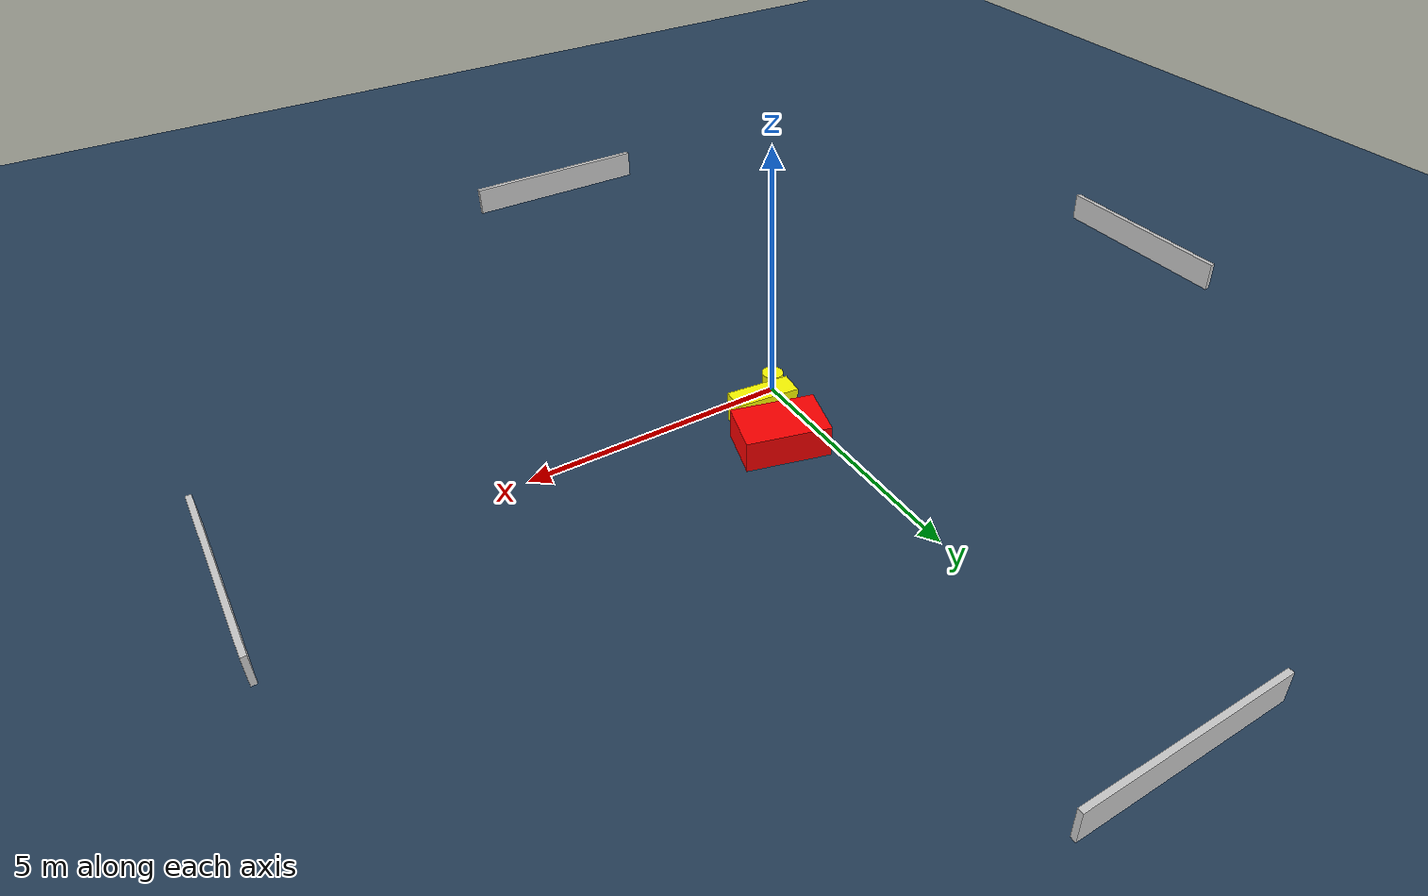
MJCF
<?xml version="1.0" ?>
<mujoco model="generated_environment">
  <option timestep="0.01" integrator="RK4" cone="elliptic"/>
  <default>
    <geom density="1"/>
  </default>
  <asset>
    <texture builtin="gradient" height="3072" name="skybox" rgb1="0.3 0.5 0.7" rgb2="0 0 0" type="skybox" width="512"/>
    <texture builtin="checker" height="300" name="groundplane" rgb1="0.2 0.3 0.4" rgb2="0.1 0.2 0.3" type="2d" width="300"/>
    <material name="groundplane" reflectance="0.2" texrepeat="5 5" texture="groundplane"/>
  </asset>
  <worldbody>
    <light dir="0 0 -1" directional="true" pos="0 0 1.5"/>
    <geom condim="3" friction="0.5 0.005 0.001" material="groundplane" name="floor" pos="0 0 0" size="0 0 0.05" type="plane"/>
    <body name="walls">
      <geom name="wall_1" condim="4" pos="-10.0 0.0 0.3" rgba="0.800000011920929 0.800000011920929 0.800000011920929 1.0" size="0.05 2.0 0.3" type="box"/>
      <geom name="wall_2" condim="4" pos="10.0 0.0 0.3" rgba="0.800000011920929 0.800000011920929 0.800000011920929 1.0" size="0.05 2.0 0.3" type="box"/>
      <geom name="wall_3" condim="4" pos="0.0 -10.0 0.3" rgba="0.800000011920929 0.800000011920929 0.800000011920929 1.0" size="2.0 0.05 0.3" type="box"/>
      <geom name="wall_4" condim="4" pos="0.0 10.0 0.3" rgba="0.800000011920929 0.800000011920929 0.800000011920929 1.0" size="2.0 0.05 0.3" type="box"/>
    </body>
    <body name="robot">
      <joint name="joint_x" type="slide" pos="0 0 0" axis="1 0 0"/>
      <joint name="joint_y" type="slide" pos="0 0 0" axis="0 1 0"/>
      <geom name="robot" type="cylinder" pos="0.0 0.0 0.2" size="0.2 0.2 0.0" mass="5.0" friction="1.0 0.005 0.0001" condim="4" rgba="1.0 1.0 0.0 1.0"/>
    </body>
    <body name="obstacle_1_movable">
      <geom name="obstacle_1_movable" condim="4" pos="0.6244323954304132 0.6378329033073739 0.3" euler="0 0 173.85598968602756" friction="0.0 0.005 0.001" rgba="1.0 1.0 0.0 1.0" size="0.6020553000364054 0.2292368153159392 0.3" type="box" mass="0.1"/>
      <joint type="free"/>
    </body>
    <body name="obstacle_2_static">
      <geom name="obstacle_2_static" condim="4" pos="0.804308039255158 1.5117536283449688 0.3" euler="0 0 254.7552223611865" friction="0.0 0.005 0.001" rgba="1.0 0.0 0.0 1.0" size="0.5146993041260752 0.7845109420476397 0.3" type="box"/>
    </body>
  </worldbody>
  <actuator>
    <motor name="actuator_x" joint="joint_x" gear="1" ctrlrange="-1 1"/>
    <motor name="actuator_y" joint="joint_y" gear="1" ctrlrange="-1 1"/>
  </actuator>
</mujoco>
